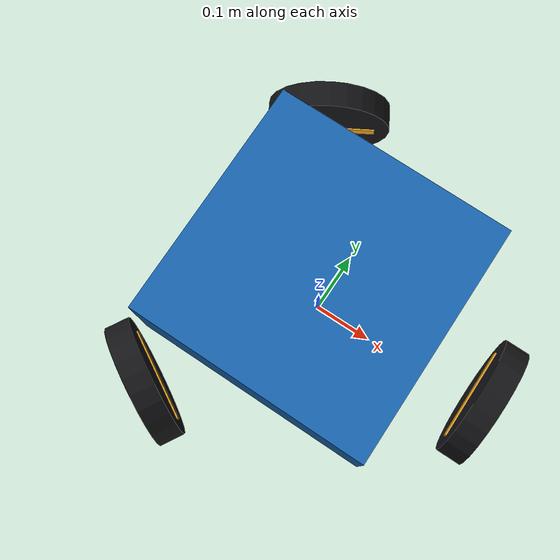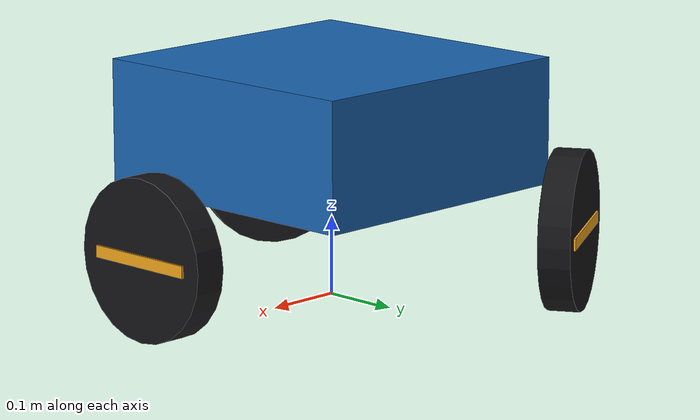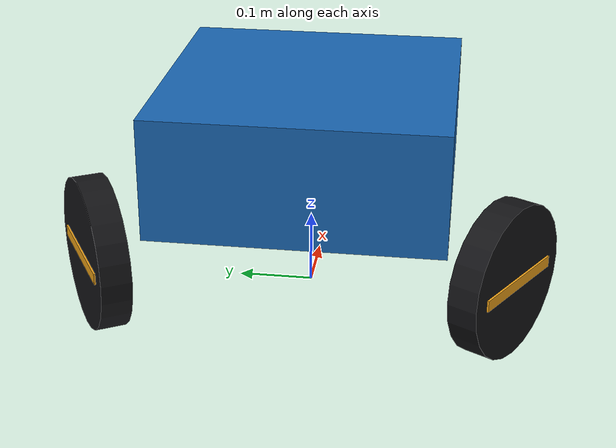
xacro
<?xml version="1.0"?>
<robot name="omni3" xmlns:xacro="http://www.ros.org/wiki/xacro">
  <material name="body"><color rgba="0.1 0.4 0.7 1"/></material>
  <material name="rubber"><color rgba="0.08 0.08 0.09 1"/></material>
  <material name="spoke"><color rgba="0.95 0.65 0.1 1"/></material>
  <link name="base_footprint"/>
  <joint name="base_fixed" type="fixed"><parent link="base_footprint"/><child link="base_link"/></joint>
  <link name="base_link">
    <visual><origin xyz="0 0 0.22"/><geometry><box size="0.38 0.38 0.16"/></geometry><material name="body"/></visual>
    <collision><origin xyz="0 0 0.22"/><geometry><box size="0.38 0.38 0.16"/></geometry></collision>
  </link>
  <xacro:macro name="wheel" params="joint x y angle radius:=0.1">
    <link name="${joint}_link">
      <!-- 外观用轮毂圆柱和色条；被动滚子的自由方向由运动学约束描述。 -->
      <visual><origin rpy="${-pi/2} 0 0"/><geometry><cylinder radius="${radius}" length="0.04"/></geometry><material name="rubber"/></visual>
      <visual><geometry><box size="0.15 0.045 0.015"/></geometry><material name="spoke"/></visual>
      <collision><origin rpy="${-pi/2} 0 0"/><geometry><cylinder radius="${radius}" length="0.04"/></geometry></collision>
    </link>
    <joint name="${joint}" type="continuous">
      <parent link="base_link"/><child link="${joint}_link"/>
      <origin xyz="${x} ${y} ${radius}" rpy="0 0 ${angle}"/>
      <axis xyz="0 1 0"/><limit effort="20" velocity="30"/>
    </joint>
  </xacro:macro>
  <xacro:wheel joint="wheel_0_joint" x="0.3" y="0" angle="1.570796326794897"/>
  <xacro:wheel joint="wheel_1_joint" x="-0.1499999999999999" y="0.2598076211353316" angle="3.665191429188092"/>
  <xacro:wheel joint="wheel_2_joint" x="-0.1500000000000001" y="-0.2598076211353315" angle="5.759586531581287"/>
</robot>
